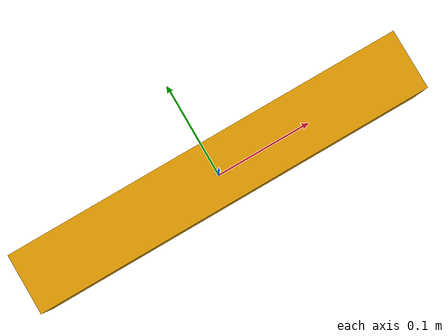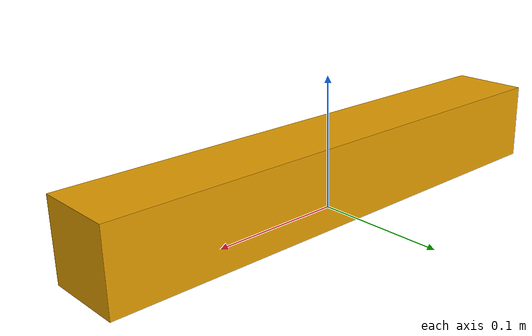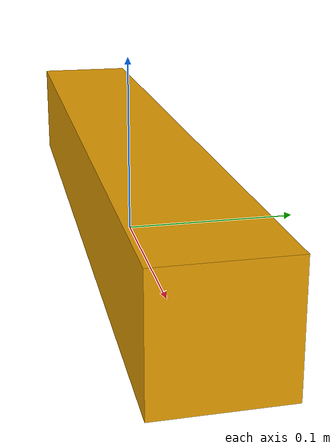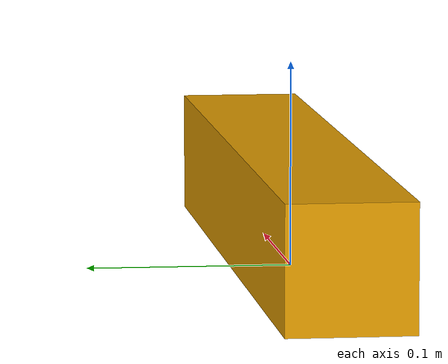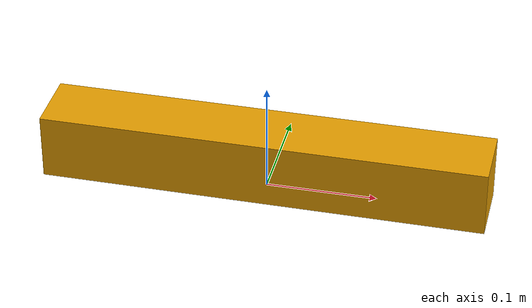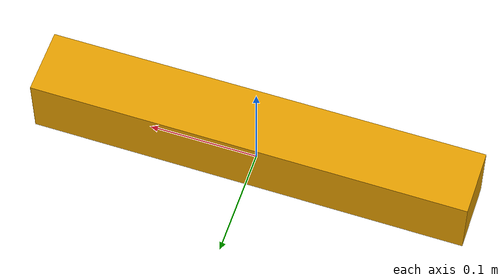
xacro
<?xml version="1.0"?>
<robot name="property_tutorial"
       xmlns:xacro="http://www.ros.org/wiki/xacro">

    <!-- 定义Xacro属性 -->
    <xacro:property name="length" value="0.40"/>
    <xacro:property name="width" value="0.06"/>
    <xacro:property name="height" value="0.06"/>
    <xacro:property name="z"
                    value="${height/2}"/>

    <link name="base_link">
        <visual>
            <origin xyz="0 0 ${z}"/>
            <geometry>
                <box size="${length} ${width} ${height}"/>
            </geometry>
        </visual>
    </link>
</robot>
